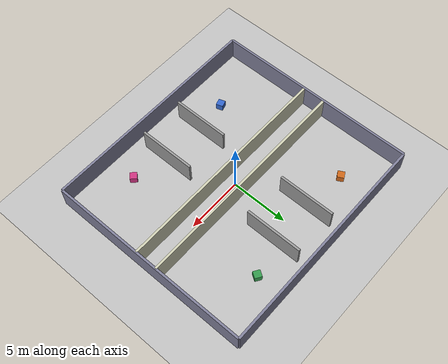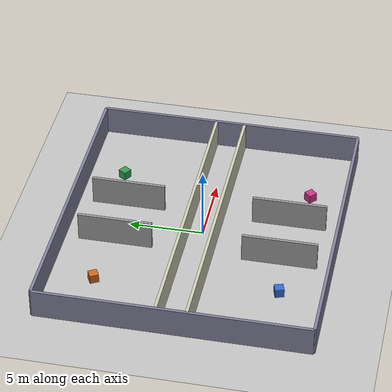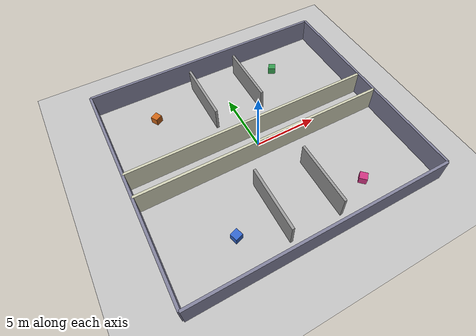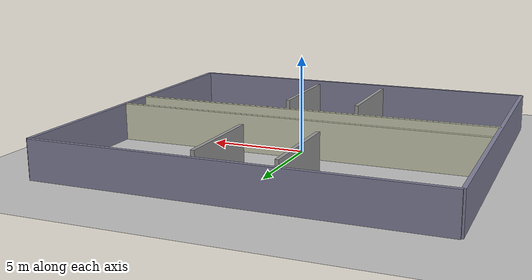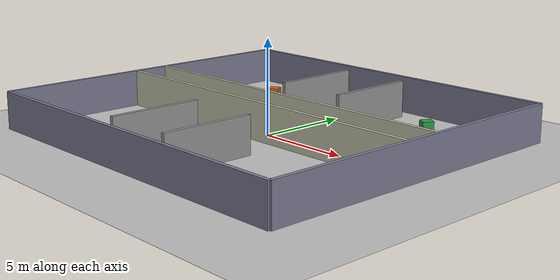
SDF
<?xml version="1.0" ?>
<sdf version='1.8'>
  <world name='corridor'>

    <physics name='1ms' type='ignored'>
      <max_step_size>0.001</max_step_size>
      <real_time_factor>1</real_time_factor>
    </physics>

    <plugin filename="ignition-gazebo-physics-system"
            name="ignition::gazebo::systems::Physics"/>
    <plugin filename="ignition-gazebo-user-commands-system"
            name="ignition::gazebo::systems::UserCommands"/>
    <plugin filename="ignition-gazebo-scene-broadcaster-system"
            name="ignition::gazebo::systems::SceneBroadcaster"/>
    <plugin filename="ignition-gazebo-sensors-system"
            name="ignition::gazebo::systems::Sensors">
      <render_engine>ogre2</render_engine>
    </plugin>
    <plugin filename="ignition-gazebo-contact-system"
            name="ignition::gazebo::systems::Contact"/>

    <light name='sun' type='directional'>
      <pose>0 0 15 0 0 0</pose>
      <cast_shadows>true</cast_shadows>
      <intensity>1</intensity>
      <direction>-0.4 0.2 -0.9</direction>
      <diffuse>0.9 0.9 0.9 1</diffuse>
      <specular>0.2 0.2 0.2 1</specular>
    </light>

    <!-- Ground -->
    <model name='ground_plane'>
      <static>true</static>
      <link name='link'>
        <collision name='c'><geometry><plane><normal>0 0 1</normal><size>100 100</size></plane></geometry></collision>
        <visual name='v'><geometry><plane><normal>0 0 1</normal><size>100 100</size></plane></geometry>
          <material><ambient>0.75 0.75 0.75 1</ambient><diffuse>0.75 0.75 0.75 1</diffuse></material>
        </visual>
      </link>
    </model>

    <!-- Helper macro: each wall segment is a 0.2-thick box -->

    <!-- ── Outer boundary ────────────────────────────────────── -->
    <model name='outer_N'><static>true</static><pose>0 9 1 0 0 0</pose>
      <link name='l'><collision name='c'><geometry><box><size>20 0.2 2</size></box></geometry></collision>
      <visual name='v'><geometry><box><size>20 0.2 2</size></box></geometry>
        <material><ambient>0.5 0.5 0.6 1</ambient><diffuse>0.5 0.5 0.6 1</diffuse></material></visual></link></model>

    <model name='outer_S'><static>true</static><pose>0 -9 1 0 0 0</pose>
      <link name='l'><collision name='c'><geometry><box><size>20 0.2 2</size></box></geometry></collision>
      <visual name='v'><geometry><box><size>20 0.2 2</size></box></geometry>
        <material><ambient>0.5 0.5 0.6 1</ambient><diffuse>0.5 0.5 0.6 1</diffuse></material></visual></link></model>

    <model name='outer_E'><static>true</static><pose>10 0 1 0 0 0</pose>
      <link name='l'><collision name='c'><geometry><box><size>0.2 18 2</size></box></geometry></collision>
      <visual name='v'><geometry><box><size>0.2 18 2</size></box></geometry>
        <material><ambient>0.5 0.5 0.6 1</ambient><diffuse>0.5 0.5 0.6 1</diffuse></material></visual></link></model>

    <model name='outer_W'><static>true</static><pose>-10 0 1 0 0 0</pose>
      <link name='l'><collision name='c'><geometry><box><size>0.2 18 2</size></box></geometry></collision>
      <visual name='v'><geometry><box><size>0.2 18 2</size></box></geometry>
        <material><ambient>0.5 0.5 0.6 1</ambient><diffuse>0.5 0.5 0.6 1</diffuse></material></visual></link></model>

    <!-- ── Main horizontal corridor walls (y = ±1) ───────────── -->
    <model name='corr_N'><static>true</static><pose>0 1 1 0 0 0</pose>
      <link name='l'><collision name='c'><geometry><box><size>20 0.2 2</size></box></geometry></collision>
      <visual name='v'><geometry><box><size>20 0.2 2</size></box></geometry>
        <material><ambient>0.8 0.8 0.7 1</ambient><diffuse>0.8 0.8 0.7 1</diffuse></material></visual></link></model>

    <model name='corr_S'><static>true</static><pose>0 -1 1 0 0 0</pose>
      <link name='l'><collision name='c'><geometry><box><size>20 0.2 2</size></box></geometry></collision>
      <visual name='v'><geometry><box><size>20 0.2 2</size></box></geometry>
        <material><ambient>0.8 0.8 0.7 1</ambient><diffuse>0.8 0.8 0.7 1</diffuse></material></visual></link></model>

    <!-- ── Room A — top-left (x: -8 to -2, y: 1 to 8) ────────── -->
    <!-- West inner wall with doorway gap at y=5 -->
    <model name='roomA_W1'><static>true</static><pose>-2 5.5 1 0 0 0</pose>
      <link name='l'><collision name='c'><geometry><box><size>0.2 5 2</size></box></geometry></collision>
      <visual name='v'><geometry><box><size>0.2 5 2</size></box></geometry>
        <material><ambient>0.6 0.6 0.6 1</ambient><diffuse>0.6 0.6 0.6 1</diffuse></material></visual></link></model>

    <!-- ── Room B — top-right (x: 2 to 8, y: 1 to 8) ─────────── -->
    <model name='roomB_W1'><static>true</static><pose>2 5.5 1 0 0 0</pose>
      <link name='l'><collision name='c'><geometry><box><size>0.2 5 2</size></box></geometry></collision>
      <visual name='v'><geometry><box><size>0.2 5 2</size></box></geometry>
        <material><ambient>0.6 0.6 0.6 1</ambient><diffuse>0.6 0.6 0.6 1</diffuse></material></visual></link></model>

    <!-- ── Room C — bottom-left (x: -8 to -2, y: -8 to -1) ───── -->
    <model name='roomC_W1'><static>true</static><pose>-2 -5.5 1 0 0 0</pose>
      <link name='l'><collision name='c'><geometry><box><size>0.2 5 2</size></box></geometry></collision>
      <visual name='v'><geometry><box><size>0.2 5 2</size></box></geometry>
        <material><ambient>0.6 0.6 0.6 1</ambient><diffuse>0.6 0.6 0.6 1</diffuse></material></visual></link></model>

    <!-- ── Room D — bottom-right (x: 2 to 8, y: -8 to -1) ────── -->
    <model name='roomD_W1'><static>true</static><pose>2 -5.5 1 0 0 0</pose>
      <link name='l'><collision name='c'><geometry><box><size>0.2 5 2</size></box></geometry></collision>
      <visual name='v'><geometry><box><size>0.2 5 2</size></box></geometry>
        <material><ambient>0.6 0.6 0.6 1</ambient><diffuse>0.6 0.6 0.6 1</diffuse></material></visual></link></model>

    <!-- ── Scatter a few boxes in the rooms ─────────────────────── -->
    <model name='box1'><static>true</static><pose>-6 6 0.3 0 0 0.5</pose>
      <link name='l'><collision name='c'><geometry><box><size>0.6 0.6 0.6</size></box></geometry></collision>
      <visual name='v'><geometry><box><size>0.6 0.6 0.6</size></box></geometry>
        <material><ambient>0.8 0.4 0.1 1</ambient><diffuse>0.8 0.4 0.1 1</diffuse></material></visual></link></model>

    <model name='box2'><static>true</static><pose>5 6.5 0.3 0 0 1.0</pose>
      <link name='l'><collision name='c'><geometry><box><size>0.6 0.6 0.6</size></box></geometry></collision>
      <visual name='v'><geometry><box><size>0.6 0.6 0.6</size></box></geometry>
        <material><ambient>0.2 0.6 0.3 1</ambient><diffuse>0.2 0.6 0.3 1</diffuse></material></visual></link></model>

    <model name='box3'><static>true</static><pose>-5 -6 0.3 0 0 0.3</pose>
      <link name='l'><collision name='c'><geometry><box><size>0.6 0.6 0.6</size></box></geometry></collision>
      <visual name='v'><geometry><box><size>0.6 0.6 0.6</size></box></geometry>
        <material><ambient>0.2 0.4 0.8 1</ambient><diffuse>0.2 0.4 0.8 1</diffuse></material></visual></link></model>

    <model name='box4'><static>true</static><pose>5 -6.5 0.3 0 0 0.8</pose>
      <link name='l'><collision name='c'><geometry><box><size>0.6 0.6 0.6</size></box></geometry></collision>
      <visual name='v'><geometry><box><size>0.6 0.6 0.6</size></box></geometry>
        <material><ambient>0.8 0.2 0.5 1</ambient><diffuse>0.8 0.2 0.5 1</diffuse></material></visual></link></model>

  </world>
</sdf>
